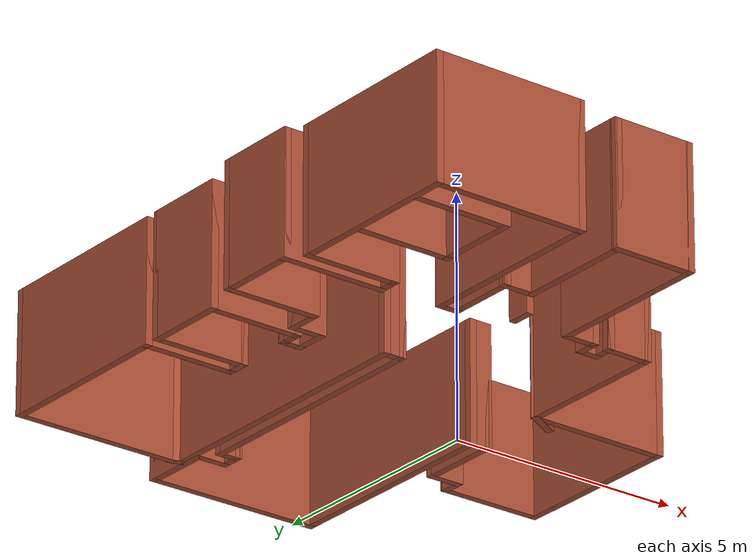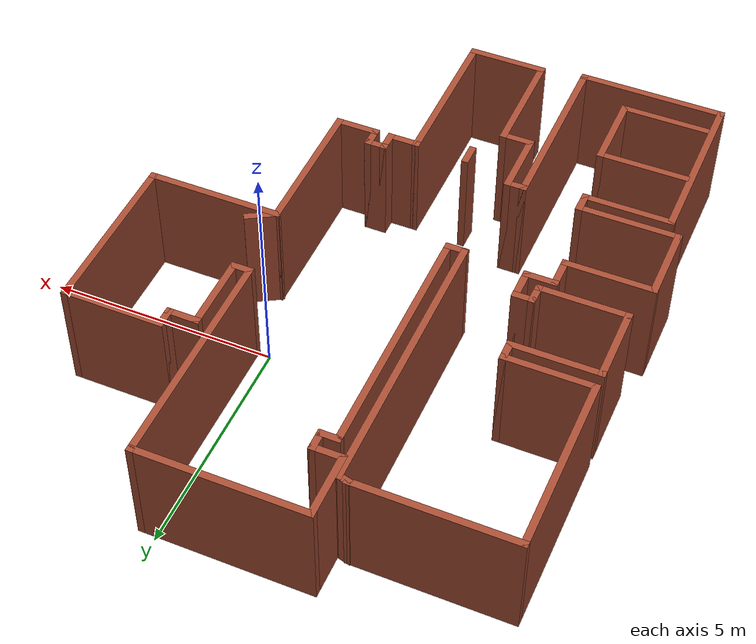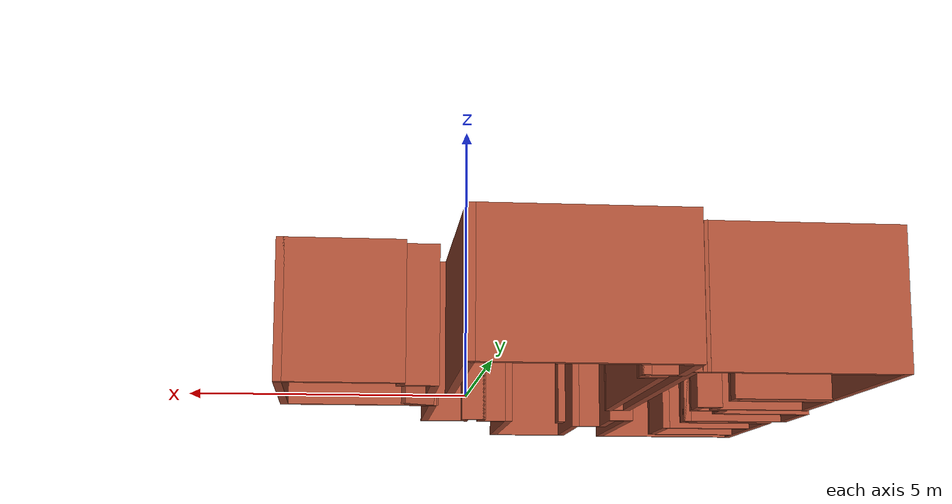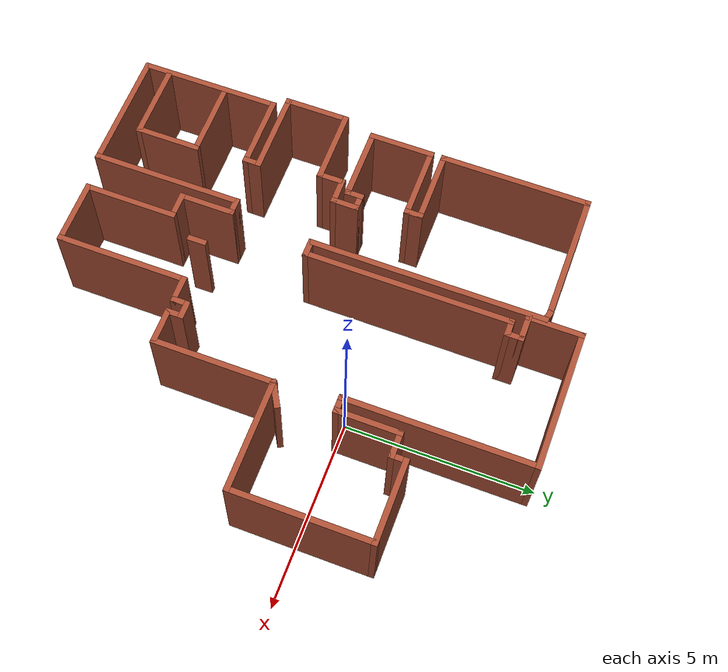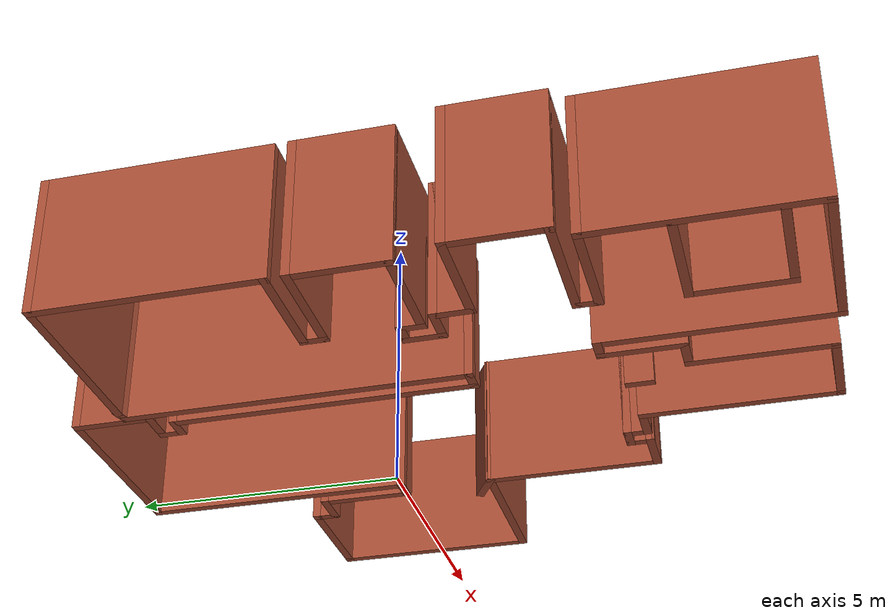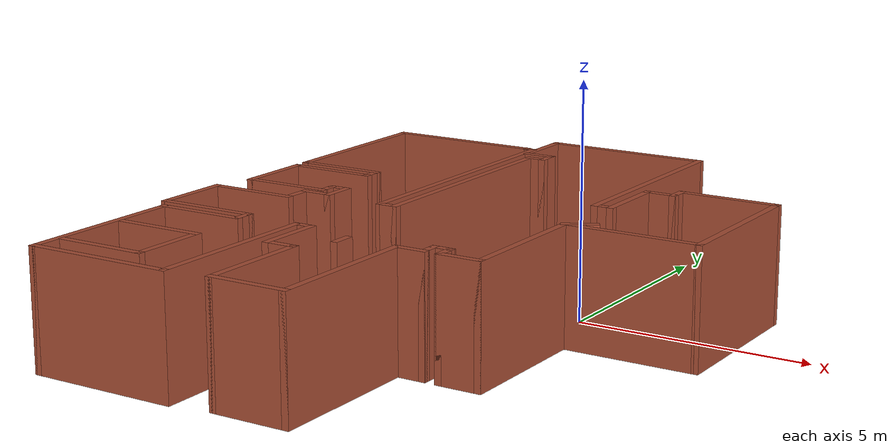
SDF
<?xml version='1.0'?>
<sdf version='1.6'>
  <model name='map_100'>
    <pose frame=''>-1.90817 -1.69509 0 0 -0 0</pose>
    <link name='Wall_0'>
      <collision name='Wall_0_Collision'>
        <geometry>
          <box>
            <size>3.5 0.15 2.5</size>
          </box>
        </geometry>
        <pose frame=''>0 0 1.25 0 -0 0</pose>
      </collision>
      <visual name='Wall_0_Visual'>
        <pose frame=''>0 0 1.25 0 -0 0</pose>
        <geometry>
          <box>
            <size>3.5 0.15 2.5</size>
          </box>
        </geometry>
        <material>
          <script>
            <uri>file://media/materials/scripts/gazebo.material</uri>
            <name>Gazebo/Bricks</name>
          </script>
          <ambient>1 1 1 1</ambient>
        </material>
        <meta>
          <layer>0</layer>
        </meta>
      </visual>
      <pose frame=''>-3.35 5.65 0 0 -0 3.14159</pose>
    </link>
    <link name='Wall_10'>
      <collision name='Wall_10_Collision'>
        <geometry>
          <box>
            <size>0.5 0.15 2.5</size>
          </box>
        </geometry>
        <pose frame=''>0 0 1.25 0 -0 0</pose>
      </collision>
      <visual name='Wall_10_Visual'>
        <pose frame=''>0 0 1.25 0 -0 0</pose>
        <geometry>
          <box>
            <size>0.5 0.15 2.5</size>
          </box>
        </geometry>
        <material>
          <script>
            <uri>file://media/materials/scripts/gazebo.material</uri>
            <name>Gazebo/Bricks</name>
          </script>
          <ambient>1 1 1 1</ambient>
        </material>
        <meta>
          <layer>0</layer>
        </meta>
      </visual>
      <pose frame=''>-3.175 1.625 0 0 -0 -1.5708</pose>
    </link>
    <link name='Wall_11'>
      <collision name='Wall_11_Collision'>
        <geometry>
          <box>
            <size>2 0.15 2.5</size>
          </box>
        </geometry>
        <pose frame=''>0 0 1.25 0 -0 0</pose>
      </collision>
      <visual name='Wall_11_Visual'>
        <pose frame=''>0 0 1.25 0 -0 0</pose>
        <geometry>
          <box>
            <size>2 0.15 2.5</size>
          </box>
        </geometry>
        <material>
          <script>
            <uri>file://media/materials/scripts/gazebo.material</uri>
            <name>Gazebo/Bricks</name>
          </script>
          <ambient>1 1 1 1</ambient>
        </material>
        <meta>
          <layer>0</layer>
        </meta>
      </visual>
      <pose frame=''>-4.1 1.45 0 0 -0 3.14159</pose>
    </link>
    <link name='Wall_12'>
      <collision name='Wall_12_Collision'>
        <geometry>
          <box>
            <size>1.75 0.15 2.5</size>
          </box>
        </geometry>
        <pose frame=''>0 0 1.25 0 -0 0</pose>
      </collision>
      <visual name='Wall_12_Visual'>
        <pose frame=''>0 0 1.25 0 -0 0</pose>
        <geometry>
          <box>
            <size>1.75 0.15 2.5</size>
          </box>
        </geometry>
        <material>
          <script>
            <uri>file://media/materials/scripts/gazebo.material</uri>
            <name>Gazebo/Bricks</name>
          </script>
          <ambient>1 1 1 1</ambient>
        </material>
        <meta>
          <layer>0</layer>
        </meta>
      </visual>
      <pose frame=''>-5.025 0.65 0 0 -0 -1.5708</pose>
    </link>
    <link name='Wall_13'>
      <collision name='Wall_13_Collision'>
        <geometry>
          <box>
            <size>2 0.15 2.5</size>
          </box>
        </geometry>
        <pose frame=''>0 0 1.25 0 -0 0</pose>
      </collision>
      <visual name='Wall_13_Visual'>
        <pose frame=''>0 0 1.25 0 -0 0</pose>
        <geometry>
          <box>
            <size>2 0.15 2.5</size>
          </box>
        </geometry>
        <material>
          <script>
            <uri>file://media/materials/scripts/gazebo.material</uri>
            <name>Gazebo/Bricks</name>
          </script>
          <ambient>1 1 1 1</ambient>
        </material>
        <meta>
          <layer>0</layer>
        </meta>
      </visual>
      <pose frame=''>-4.1 -0.15 0 0 -0 0</pose>
    </link>
    <link name='Wall_14'>
      <collision name='Wall_14_Collision'>
        <geometry>
          <box>
            <size>0.5 0.15 2.5</size>
          </box>
        </geometry>
        <pose frame=''>0 0 1.25 0 -0 0</pose>
      </collision>
      <visual name='Wall_14_Visual'>
        <pose frame=''>0 0 1.25 0 -0 0</pose>
        <geometry>
          <box>
            <size>0.5 0.15 2.5</size>
          </box>
        </geometry>
        <material>
          <script>
            <uri>file://media/materials/scripts/gazebo.material</uri>
            <name>Gazebo/Bricks</name>
          </script>
          <ambient>1 1 1 1</ambient>
        </material>
        <meta>
          <layer>0</layer>
        </meta>
      </visual>
      <pose frame=''>-3.175 0.025 0 0 -0 1.5708</pose>
    </link>
    <link name='Wall_15'>
      <collision name='Wall_15_Collision'>
        <geometry>
          <box>
            <size>0.5 0.15 2.5</size>
          </box>
        </geometry>
        <pose frame=''>0 0 1.25 0 -0 0</pose>
      </collision>
      <visual name='Wall_15_Visual'>
        <pose frame=''>0 0 1.25 0 -0 0</pose>
        <geometry>
          <box>
            <size>0.5 0.15 2.5</size>
          </box>
        </geometry>
        <material>
          <script>
            <uri>file://media/materials/scripts/gazebo.material</uri>
            <name>Gazebo/Bricks</name>
          </script>
          <ambient>1 1 1 1</ambient>
        </material>
        <meta>
          <layer>0</layer>
        </meta>
      </visual>
      <pose frame=''>-3 0.2 0 0 -0 0</pose>
    </link>
    <link name='Wall_16'>
      <collision name='Wall_16_Collision'>
        <geometry>
          <box>
            <size>0.75 0.15 2.5</size>
          </box>
        </geometry>
        <pose frame=''>0 0 1.25 0 -0 0</pose>
      </collision>
      <visual name='Wall_16_Visual'>
        <pose frame=''>0 0 1.25 0 -0 0</pose>
        <geometry>
          <box>
            <size>0.75 0.15 2.5</size>
          </box>
        </geometry>
        <material>
          <script>
            <uri>file://media/materials/scripts/gazebo.material</uri>
            <name>Gazebo/Bricks</name>
          </script>
          <ambient>1 1 1 1</ambient>
        </material>
        <meta>
          <layer>0</layer>
        </meta>
      </visual>
      <pose frame=''>-2.825 -0.1 0 0 -0 -1.5708</pose>
    </link>
    <link name='Wall_17'>
      <collision name='Wall_17_Collision'>
        <geometry>
          <box>
            <size>0.75 0.15 2.5</size>
          </box>
        </geometry>
        <pose frame=''>0 0 1.25 0 -0 0</pose>
      </collision>
      <visual name='Wall_17_Visual'>
        <pose frame=''>0 0 1.25 0 -0 0</pose>
        <geometry>
          <box>
            <size>0.75 0.15 2.5</size>
          </box>
        </geometry>
        <material>
          <script>
            <uri>file://media/materials/scripts/gazebo.material</uri>
            <name>Gazebo/Bricks</name>
          </script>
          <ambient>1 1 1 1</ambient>
        </material>
        <meta>
          <layer>0</layer>
        </meta>
      </visual>
      <pose frame=''>-3.125 -0.4 0 0 -0 3.14159</pose>
    </link>
    <link name='Wall_18'>
      <collision name='Wall_18_Collision'>
        <geometry>
          <box>
            <size>0.75 0.15 2.5</size>
          </box>
        </geometry>
        <pose frame=''>0 0 1.25 0 -0 0</pose>
      </collision>
      <visual name='Wall_18_Visual'>
        <pose frame=''>0 0 1.25 0 -0 0</pose>
        <geometry>
          <box>
            <size>0.75 0.15 2.5</size>
          </box>
        </geometry>
        <material>
          <script>
            <uri>file://media/materials/scripts/gazebo.material</uri>
            <name>Gazebo/Bricks</name>
          </script>
          <ambient>1 1 1 1</ambient>
        </material>
        <meta>
          <layer>0</layer>
        </meta>
      </visual>
      <pose frame=''>-3.425 -0.7 0 0 -0 -1.5708</pose>
    </link>
    <link name='Wall_19'>
      <collision name='Wall_19_Collision'>
        <geometry>
          <box>
            <size>2 0.15 2.5</size>
          </box>
        </geometry>
        <pose frame=''>0 0 1.25 0 -0 0</pose>
      </collision>
      <visual name='Wall_19_Visual'>
        <pose frame=''>0 0 1.25 0 -0 0</pose>
        <geometry>
          <box>
            <size>2 0.15 2.5</size>
          </box>
        </geometry>
        <material>
          <script>
            <uri>file://media/materials/scripts/gazebo.material</uri>
            <name>Gazebo/Bricks</name>
          </script>
          <ambient>1 1 1 1</ambient>
        </material>
        <meta>
          <layer>0</layer>
        </meta>
      </visual>
      <pose frame=''>-4.35 -1 0 0 -0 3.14159</pose>
    </link>
    <link name='Wall_20'>
      <collision name='Wall_20_Collision'>
        <geometry>
          <box>
            <size>1.75 0.15 2.5</size>
          </box>
        </geometry>
        <pose frame=''>0 0 1.25 0 -0 0</pose>
      </collision>
      <visual name='Wall_20_Visual'>
        <pose frame=''>0 0 1.25 0 -0 0</pose>
        <geometry>
          <box>
            <size>1.75 0.15 2.5</size>
          </box>
        </geometry>
        <material>
          <script>
            <uri>file://media/materials/scripts/gazebo.material</uri>
            <name>Gazebo/Bricks</name>
          </script>
          <ambient>1 1 1 1</ambient>
        </material>
        <meta>
          <layer>0</layer>
        </meta>
      </visual>
      <pose frame=''>-5.275 -1.8 0 0 -0 -1.5708</pose>
    </link>
    <link name='Wall_21'>
      <collision name='Wall_21_Collision'>
        <geometry>
          <box>
            <size>2.25 0.15 2.5</size>
          </box>
        </geometry>
        <pose frame=''>0 0 1.25 0 -0 0</pose>
      </collision>
      <visual name='Wall_21_Visual'>
        <pose frame=''>0 0 1.25 0 -0 0</pose>
        <geometry>
          <box>
            <size>2.25 0.15 2.5</size>
          </box>
        </geometry>
        <material>
          <script>
            <uri>file://media/materials/scripts/gazebo.material</uri>
            <name>Gazebo/Bricks</name>
          </script>
          <ambient>1 1 1 1</ambient>
        </material>
        <meta>
          <layer>0</layer>
        </meta>
      </visual>
      <pose frame=''>-4.225 -2.6 0 0 -0 0</pose>
    </link>
    <link name='Wall_22'>
      <collision name='Wall_22_Collision'>
        <geometry>
          <box>
            <size>0.5 0.15 2.5</size>
          </box>
        </geometry>
        <pose frame=''>0 0 1.25 0 -0 0</pose>
      </collision>
      <visual name='Wall_22_Visual'>
        <pose frame=''>0 0 1.25 0 -0 0</pose>
        <geometry>
          <box>
            <size>0.5 0.15 2.5</size>
          </box>
        </geometry>
        <material>
          <script>
            <uri>file://media/materials/scripts/gazebo.material</uri>
            <name>Gazebo/Bricks</name>
          </script>
          <ambient>1 1 1 1</ambient>
        </material>
        <meta>
          <layer>0</layer>
        </meta>
      </visual>
      <pose frame=''>-3.175 -2.775 0 0 -0 -1.5708</pose>
    </link>
    <link name='Wall_23'>
      <collision name='Wall_23_Collision'>
        <geometry>
          <box>
            <size>2 0.15 2.5</size>
          </box>
        </geometry>
        <pose frame=''>0 0 1.25 0 -0 0</pose>
      </collision>
      <visual name='Wall_23_Visual'>
        <pose frame=''>0 0 1.25 0 -0 0</pose>
        <geometry>
          <box>
            <size>2 0.15 2.5</size>
          </box>
        </geometry>
        <material>
          <script>
            <uri>file://media/materials/scripts/gazebo.material</uri>
            <name>Gazebo/Bricks</name>
          </script>
          <ambient>1 1 1 1</ambient>
        </material>
        <meta>
          <layer>0</layer>
        </meta>
      </visual>
      <pose frame=''>-4.1 -2.95 0 0 -0 3.14159</pose>
    </link>
    <link name='Wall_24'>
      <collision name='Wall_24_Collision'>
        <geometry>
          <box>
            <size>3.75 0.15 2.5</size>
          </box>
        </geometry>
        <pose frame=''>0 0 1.25 0 -0 0</pose>
      </collision>
      <visual name='Wall_24_Visual'>
        <pose frame=''>0 0 1.25 0 -0 0</pose>
        <geometry>
          <box>
            <size>3.75 0.15 2.5</size>
          </box>
        </geometry>
        <material>
          <script>
            <uri>file://media/materials/scripts/gazebo.material</uri>
            <name>Gazebo/Bricks</name>
          </script>
          <ambient>1 1 1 1</ambient>
        </material>
        <meta>
          <layer>0</layer>
        </meta>
      </visual>
      <pose frame=''>-5.025 -4.75 0 0 -0 -1.5708</pose>
    </link>
    <link name='Wall_25'>
      <collision name='Wall_25_Collision'>
        <geometry>
          <box>
            <size>3.25 0.15 2.5</size>
          </box>
        </geometry>
        <pose frame=''>0 0 1.25 0 -0 0</pose>
      </collision>
      <visual name='Wall_25_Visual'>
        <pose frame=''>0 0 1.25 0 -0 0</pose>
        <geometry>
          <box>
            <size>3.25 0.15 2.5</size>
          </box>
        </geometry>
        <material>
          <script>
            <uri>file://media/materials/scripts/gazebo.material</uri>
            <name>Gazebo/Bricks</name>
          </script>
          <ambient>1 1 1 1</ambient>
        </material>
        <meta>
          <layer>0</layer>
        </meta>
      </visual>
      <pose frame=''>-3.475 -6.55 0 0 -0 0</pose>
    </link>
    <link name='Wall_26'>
      <collision name='Wall_26_Collision'>
        <geometry>
          <box>
            <size>4 0.15 2.5</size>
          </box>
        </geometry>
        <pose frame=''>0 0 1.25 0 -0 0</pose>
      </collision>
      <visual name='Wall_26_Visual'>
        <pose frame=''>0 0 1.25 0 -0 0</pose>
        <geometry>
          <box>
            <size>4 0.15 2.5</size>
          </box>
        </geometry>
        <material>
          <script>
            <uri>file://media/materials/scripts/gazebo.material</uri>
            <name>Gazebo/Bricks</name>
          </script>
          <ambient>1 1 1 1</ambient>
        </material>
        <meta>
          <layer>0</layer>
        </meta>
      </visual>
      <pose frame=''>-1.925 -4.625 0 0 -0 1.5708</pose>
    </link>
    <link name='Wall_27'>
      <collision name='Wall_27_Collision'>
        <geometry>
          <box>
            <size>0.5 0.15 2.5</size>
          </box>
        </geometry>
        <pose frame=''>0 0 1.25 0 -0 0</pose>
      </collision>
      <visual name='Wall_27_Visual'>
        <pose frame=''>0 0 1.25 0 -0 0</pose>
        <geometry>
          <box>
            <size>0.5 0.15 2.5</size>
          </box>
        </geometry>
        <material>
          <script>
            <uri>file://media/materials/scripts/gazebo.material</uri>
            <name>Gazebo/Bricks</name>
          </script>
          <ambient>1 1 1 1</ambient>
        </material>
        <meta>
          <layer>0</layer>
        </meta>
      </visual>
      <pose frame=''>-1.75 -2.7 0 0 -0 0</pose>
    </link>
    <link name='Wall_28'>
      <collision name='Wall_28_Collision'>
        <geometry>
          <box>
            <size>1.5 0.15 2.5</size>
          </box>
        </geometry>
        <pose frame=''>0 0 1.25 0 -0 0</pose>
      </collision>
      <visual name='Wall_28_Visual'>
        <pose frame=''>0 0 1.25 0 -0 0</pose>
        <geometry>
          <box>
            <size>1.5 0.15 2.5</size>
          </box>
        </geometry>
        <material>
          <script>
            <uri>file://media/materials/scripts/gazebo.material</uri>
            <name>Gazebo/Bricks</name>
          </script>
          <ambient>1 1 1 1</ambient>
        </material>
        <meta>
          <layer>0</layer>
        </meta>
      </visual>
      <pose frame=''>-1.575 -3.375 0 0 -0 -1.5708</pose>
    </link>
    <link name='Wall_29'>
      <collision name='Wall_29_Collision'>
        <geometry>
          <box>
            <size>0.75 0.15 2.5</size>
          </box>
        </geometry>
        <pose frame=''>0 0 1.25 0 -0 0</pose>
      </collision>
      <visual name='Wall_29_Visual'>
        <pose frame=''>0 0 1.25 0 -0 0</pose>
        <geometry>
          <box>
            <size>0.75 0.15 2.5</size>
          </box>
        </geometry>
        <material>
          <script>
            <uri>file://media/materials/scripts/gazebo.material</uri>
            <name>Gazebo/Bricks</name>
          </script>
          <ambient>1 1 1 1</ambient>
        </material>
        <meta>
          <layer>0</layer>
        </meta>
      </visual>
      <pose frame=''>-1.275 -4.05 0 0 -0 0</pose>
    </link>
    <link name='Wall_30'>
      <collision name='Wall_30_Collision'>
        <geometry>
          <box>
            <size>2.5 0.15 2.5</size>
          </box>
        </geometry>
        <pose frame=''>0 0 1.25 0 -0 0</pose>
      </collision>
      <visual name='Wall_30_Visual'>
        <pose frame=''>0 0 1.25 0 -0 0</pose>
        <geometry>
          <box>
            <size>2.5 0.15 2.5</size>
          </box>
        </geometry>
        <material>
          <script>
            <uri>file://media/materials/scripts/gazebo.material</uri>
            <name>Gazebo/Bricks</name>
          </script>
          <ambient>1 1 1 1</ambient>
        </material>
        <meta>
          <layer>0</layer>
        </meta>
      </visual>
      <pose frame=''>-0.975 -5.225 0 0 -0 -1.5708</pose>
    </link>
    <link name='Wall_31'>
      <collision name='Wall_31_Collision'>
        <geometry>
          <box>
            <size>1.75 0.15 2.5</size>
          </box>
        </geometry>
        <pose frame=''>0 0 1.25 0 -0 0</pose>
      </collision>
      <visual name='Wall_31_Visual'>
        <pose frame=''>0 0 1.25 0 -0 0</pose>
        <geometry>
          <box>
            <size>1.75 0.15 2.5</size>
          </box>
        </geometry>
        <material>
          <script>
            <uri>file://media/materials/scripts/gazebo.material</uri>
            <name>Gazebo/Bricks</name>
          </script>
          <ambient>1 1 1 1</ambient>
        </material>
        <meta>
          <layer>0</layer>
        </meta>
      </visual>
      <pose frame=''>-0.175 -6.4 0 0 -0 0</pose>
    </link>
    <link name='Wall_32'>
      <collision name='Wall_32_Collision'>
        <geometry>
          <box>
            <size>3.5 0.15 2.5</size>
          </box>
        </geometry>
        <pose frame=''>0 0 1.25 0 -0 0</pose>
      </collision>
      <visual name='Wall_32_Visual'>
        <pose frame=''>0 0 1.25 0 -0 0</pose>
        <geometry>
          <box>
            <size>3.5 0.15 2.5</size>
          </box>
        </geometry>
        <material>
          <script>
            <uri>file://media/materials/scripts/gazebo.material</uri>
            <name>Gazebo/Bricks</name>
          </script>
          <ambient>1 1 1 1</ambient>
        </material>
        <meta>
          <layer>0</layer>
        </meta>
      </visual>
      <pose frame=''>0.625 -4.725 0 0 -0 1.5708</pose>
    </link>
    <link name='Wall_33'>
      <collision name='Wall_33_Collision'>
        <geometry>
          <box>
            <size>0.75 0.15 2.5</size>
          </box>
        </geometry>
        <pose frame=''>0 0 1.25 0 -0 0</pose>
      </collision>
      <visual name='Wall_33_Visual'>
        <pose frame=''>0 0 1.25 0 -0 0</pose>
        <geometry>
          <box>
            <size>0.75 0.15 2.5</size>
          </box>
        </geometry>
        <material>
          <script>
            <uri>file://media/materials/scripts/gazebo.material</uri>
            <name>Gazebo/Bricks</name>
          </script>
          <ambient>1 1 1 1</ambient>
        </material>
        <meta>
          <layer>0</layer>
        </meta>
      </visual>
      <pose frame=''>0.925 -3.05 0 0 -0 0</pose>
    </link>
    <link name='Wall_34'>
      <collision name='Wall_34_Collision'>
        <geometry>
          <box>
            <size>0.5 0.15 2.5</size>
          </box>
        </geometry>
        <pose frame=''>0 0 1.25 0 -0 0</pose>
      </collision>
      <visual name='Wall_34_Visual'>
        <pose frame=''>0 0 1.25 0 -0 0</pose>
        <geometry>
          <box>
            <size>0.5 0.15 2.5</size>
          </box>
        </geometry>
        <material>
          <script>
            <uri>file://media/materials/scripts/gazebo.material</uri>
            <name>Gazebo/Bricks</name>
          </script>
          <ambient>1 1 1 1</ambient>
        </material>
        <meta>
          <layer>0</layer>
        </meta>
      </visual>
      <pose frame=''>1.225 -2.875 0 0 -0 1.5708</pose>
    </link>
    <link name='Wall_35'>
      <collision name='Wall_35_Collision'>
        <geometry>
          <box>
            <size>0.5 0.15 2.5</size>
          </box>
        </geometry>
        <pose frame=''>0 0 1.25 0 -0 0</pose>
      </collision>
      <visual name='Wall_35_Visual'>
        <pose frame=''>0 0 1.25 0 -0 0</pose>
        <geometry>
          <box>
            <size>0.5 0.15 2.5</size>
          </box>
        </geometry>
        <material>
          <script>
            <uri>file://media/materials/scripts/gazebo.material</uri>
            <name>Gazebo/Bricks</name>
          </script>
          <ambient>1 1 1 1</ambient>
        </material>
        <meta>
          <layer>0</layer>
        </meta>
      </visual>
      <pose frame=''>1.4 -2.7 0 0 -0 0</pose>
    </link>
    <link name='Wall_36'>
      <collision name='Wall_36_Collision'>
        <geometry>
          <box>
            <size>0.5 0.15 2.5</size>
          </box>
        </geometry>
        <pose frame=''>0 0 1.25 0 -0 0</pose>
      </collision>
      <visual name='Wall_36_Visual'>
        <pose frame=''>0 0 1.25 0 -0 0</pose>
        <geometry>
          <box>
            <size>0.5 0.15 2.5</size>
          </box>
        </geometry>
        <material>
          <script>
            <uri>file://media/materials/scripts/gazebo.material</uri>
            <name>Gazebo/Bricks</name>
          </script>
          <ambient>1 1 1 1</ambient>
        </material>
        <meta>
          <layer>0</layer>
        </meta>
      </visual>
      <pose frame=''>1.575 -2.875 0 0 -0 -1.5708</pose>
    </link>
    <link name='Wall_37'>
      <collision name='Wall_37_Collision'>
        <geometry>
          <box>
            <size>1 0.15 2.5</size>
          </box>
        </geometry>
        <pose frame=''>0 0 1.25 0 -0 0</pose>
      </collision>
      <visual name='Wall_37_Visual'>
        <pose frame=''>0 0 1.25 0 -0 0</pose>
        <geometry>
          <box>
            <size>1 0.15 2.5</size>
          </box>
        </geometry>
        <material>
          <script>
            <uri>file://media/materials/scripts/gazebo.material</uri>
            <name>Gazebo/Bricks</name>
          </script>
          <ambient>1 1 1 1</ambient>
        </material>
        <meta>
          <layer>0</layer>
        </meta>
      </visual>
      <pose frame=''>2 -3.05 0 0 -0 0</pose>
    </link>
    <link name='Wall_38'>
      <collision name='Wall_38_Collision'>
        <geometry>
          <box>
            <size>3.25 0.15 2.5</size>
          </box>
        </geometry>
        <pose frame=''>0 0 1.25 0 -0 0</pose>
      </collision>
      <visual name='Wall_38_Visual'>
        <pose frame=''>0 0 1.25 0 -0 0</pose>
        <geometry>
          <box>
            <size>3.25 0.15 2.5</size>
          </box>
        </geometry>
        <material>
          <script>
            <uri>file://media/materials/scripts/gazebo.material</uri>
            <name>Gazebo/Bricks</name>
          </script>
          <ambient>1 1 1 1</ambient>
        </material>
        <meta>
          <layer>0</layer>
        </meta>
      </visual>
      <pose frame=''>2.425 -1.5 0 0 -0 1.5708</pose>
    </link>
    <link name='Wall_39'>
      <collision name='Wall_39_Collision'>
        <geometry>
          <box>
            <size>3 0.15 2.5</size>
          </box>
        </geometry>
        <pose frame=''>0 0 1.25 0 -0 0</pose>
      </collision>
      <visual name='Wall_39_Visual'>
        <pose frame=''>0 0 1.25 0 -0 0</pose>
        <geometry>
          <box>
            <size>3 0.15 2.5</size>
          </box>
        </geometry>
        <material>
          <script>
            <uri>file://media/materials/scripts/gazebo.material</uri>
            <name>Gazebo/Bricks</name>
          </script>
          <ambient>1 1 1 1</ambient>
        </material>
        <meta>
          <layer>0</layer>
        </meta>
      </visual>
      <pose frame=''>3.85 0.05 0 0 -0 0</pose>
    </link>
    <link name='Wall_40'>
      <collision name='Wall_40_Collision'>
        <geometry>
          <box>
            <size>3.75 0.15 2.5</size>
          </box>
        </geometry>
        <pose frame=''>0 0 1.25 0 -0 0</pose>
      </collision>
      <visual name='Wall_40_Visual'>
        <pose frame=''>0 0 1.25 0 -0 0</pose>
        <geometry>
          <box>
            <size>3.75 0.15 2.5</size>
          </box>
        </geometry>
        <material>
          <script>
            <uri>file://media/materials/scripts/gazebo.material</uri>
            <name>Gazebo/Bricks</name>
          </script>
          <ambient>1 1 1 1</ambient>
        </material>
        <meta>
          <layer>0</layer>
        </meta>
      </visual>
      <pose frame=''>5.275 1.85 0 0 -0 1.5708</pose>
    </link>
    <link name='Wall_41'>
      <collision name='Wall_41_Collision'>
        <geometry>
          <box>
            <size>2.25 0.15 2.5</size>
          </box>
        </geometry>
        <pose frame=''>0 0 1.25 0 -0 0</pose>
      </collision>
      <visual name='Wall_41_Visual'>
        <pose frame=''>0 0 1.25 0 -0 0</pose>
        <geometry>
          <box>
            <size>2.25 0.15 2.5</size>
          </box>
        </geometry>
        <material>
          <script>
            <uri>file://media/materials/scripts/gazebo.material</uri>
            <name>Gazebo/Bricks</name>
          </script>
          <ambient>1 1 1 1</ambient>
        </material>
        <meta>
          <layer>0</layer>
        </meta>
      </visual>
      <pose frame=''>4.225 3.65 0 0 -0 3.14159</pose>
    </link>
    <link name='Wall_42'>
      <collision name='Wall_42_Collision'>
        <geometry>
          <box>
            <size>0.5 0.15 2.5</size>
          </box>
        </geometry>
        <pose frame=''>0 0 1.25 0 -0 0</pose>
      </collision>
      <visual name='Wall_42_Visual'>
        <pose frame=''>0 0 1.25 0 -0 0</pose>
        <geometry>
          <box>
            <size>0.5 0.15 2.5</size>
          </box>
        </geometry>
        <material>
          <script>
            <uri>file://media/materials/scripts/gazebo.material</uri>
            <name>Gazebo/Bricks</name>
          </script>
          <ambient>1 1 1 1</ambient>
        </material>
        <meta>
          <layer>0</layer>
        </meta>
      </visual>
      <pose frame=''>3.175 3.475 0 0 -0 -1.5708</pose>
    </link>
    <link name='Wall_43'>
      <collision name='Wall_43_Collision'>
        <geometry>
          <box>
            <size>0.75 0.15 2.5</size>
          </box>
        </geometry>
        <pose frame=''>0 0 1.25 0 -0 0</pose>
      </collision>
      <visual name='Wall_43_Visual'>
        <pose frame=''>0 0 1.25 0 -0 0</pose>
        <geometry>
          <box>
            <size>0.75 0.15 2.5</size>
          </box>
        </geometry>
        <material>
          <script>
            <uri>file://media/materials/scripts/gazebo.material</uri>
            <name>Gazebo/Bricks</name>
          </script>
          <ambient>1 1 1 1</ambient>
        </material>
        <meta>
          <layer>0</layer>
        </meta>
      </visual>
      <pose frame=''>2.875 3.3 0 0 -0 3.14159</pose>
    </link>
    <link name='Wall_44'>
      <collision name='Wall_44_Collision'>
        <geometry>
          <box>
            <size>1.75 0.15 2.5</size>
          </box>
        </geometry>
        <pose frame=''>0 0 1.25 0 -0 0</pose>
      </collision>
      <visual name='Wall_44_Visual'>
        <pose frame=''>0 0 1.25 0 -0 0</pose>
        <geometry>
          <box>
            <size>1.75 0.15 2.5</size>
          </box>
        </geometry>
        <material>
          <script>
            <uri>file://media/materials/scripts/gazebo.material</uri>
            <name>Gazebo/Bricks</name>
          </script>
          <ambient>1 1 1 1</ambient>
        </material>
        <meta>
          <layer>0</layer>
        </meta>
      </visual>
      <pose frame=''>2.575 2.5 0 0 -0 -1.5708</pose>
    </link>
    <link name='Wall_45'>
      <collision name='Wall_45_Collision'>
        <geometry>
          <box>
            <size>0.5 0.15 2.5</size>
          </box>
        </geometry>
        <pose frame=''>0 0 1.25 0 -0 0</pose>
      </collision>
      <visual name='Wall_45_Visual'>
        <pose frame=''>0 0 1.25 0 -0 0</pose>
        <geometry>
          <box>
            <size>0.5 0.15 2.5</size>
          </box>
        </geometry>
        <material>
          <script>
            <uri>file://media/materials/scripts/gazebo.material</uri>
            <name>Gazebo/Bricks</name>
          </script>
          <ambient>1 1 1 1</ambient>
        </material>
        <meta>
          <layer>0</layer>
        </meta>
      </visual>
      <pose frame=''>2.4 1.7 0 0 -0 3.14159</pose>
    </link>
    <link name='Wall_46'>
      <collision name='Wall_46_Collision'>
        <geometry>
          <box>
            <size>5 0.15 2.5</size>
          </box>
        </geometry>
        <pose frame=''>0 0 1.25 0 -0 0</pose>
      </collision>
      <visual name='Wall_46_Visual'>
        <pose frame=''>0 0 1.25 0 -0 0</pose>
        <geometry>
          <box>
            <size>5 0.15 2.5</size>
          </box>
        </geometry>
        <material>
          <script>
            <uri>file://media/materials/scripts/gazebo.material</uri>
            <name>Gazebo/Bricks</name>
          </script>
          <ambient>1 1 1 1</ambient>
        </material>
        <meta>
          <layer>0</layer>
        </meta>
      </visual>
      <pose frame=''>2.225 4.125 0 0 -0 1.5708</pose>
    </link>
    <link name='Wall_47'>
      <collision name='Wall_47_Collision'>
        <geometry>
          <box>
            <size>3.75 0.15 2.5</size>
          </box>
        </geometry>
        <pose frame=''>0 0 1.25 0 -0 0</pose>
      </collision>
      <visual name='Wall_47_Visual'>
        <pose frame=''>0 0 1.25 0 -0 0</pose>
        <geometry>
          <box>
            <size>3.75 0.15 2.5</size>
          </box>
        </geometry>
        <material>
          <script>
            <uri>file://media/materials/scripts/gazebo.material</uri>
            <name>Gazebo/Bricks</name>
          </script>
          <ambient>1 1 1 1</ambient>
        </material>
        <meta>
          <layer>0</layer>
        </meta>
      </visual>
      <pose frame=''>0.425 6.55 0 0 -0 3.14159</pose>
    </link>
    <link name='Wall_48'>
      <collision name='Wall_48_Collision'>
        <geometry>
          <box>
            <size>1.5 0.15 2.5</size>
          </box>
        </geometry>
        <pose frame=''>0 0 1.25 0 -0 0</pose>
      </collision>
      <visual name='Wall_48_Visual'>
        <pose frame=''>0 0 1.25 0 -0 0</pose>
        <geometry>
          <box>
            <size>1.5 0.15 2.5</size>
          </box>
        </geometry>
        <material>
          <script>
            <uri>file://media/materials/scripts/gazebo.material</uri>
            <name>Gazebo/Bricks</name>
          </script>
          <ambient>1 1 1 1</ambient>
        </material>
        <meta>
          <layer>0</layer>
        </meta>
      </visual>
      <pose frame=''>-1.375 5.875 0 0 -0 -1.5708</pose>
    </link>
    <link name='Wall_49'>
      <collision name='Wall_49_Collision'>
        <geometry>
          <box>
            <size>0.75 0.15 2.5</size>
          </box>
        </geometry>
        <pose frame=''>0 0 1.25 0 -0 0</pose>
      </collision>
      <visual name='Wall_49_Visual'>
        <pose frame=''>0 0 1.25 0 -0 0</pose>
        <geometry>
          <box>
            <size>0.75 0.15 2.5</size>
          </box>
        </geometry>
        <material>
          <script>
            <uri>file://media/materials/scripts/gazebo.material</uri>
            <name>Gazebo/Bricks</name>
          </script>
          <ambient>1 1 1 1</ambient>
        </material>
        <meta>
          <layer>0</layer>
        </meta>
      </visual>
      <pose frame=''>-1.075 5.2 0 0 -0 0</pose>
    </link>
    <link name='Wall_50'>
      <collision name='Wall_50_Collision'>
        <geometry>
          <box>
            <size>0.5 0.15 2.5</size>
          </box>
        </geometry>
        <pose frame=''>0 0 1.25 0 -0 0</pose>
      </collision>
      <visual name='Wall_50_Visual'>
        <pose frame=''>0 0 1.25 0 -0 0</pose>
        <geometry>
          <box>
            <size>0.5 0.15 2.5</size>
          </box>
        </geometry>
        <material>
          <script>
            <uri>file://media/materials/scripts/gazebo.material</uri>
            <name>Gazebo/Bricks</name>
          </script>
          <ambient>1 1 1 1</ambient>
        </material>
        <meta>
          <layer>0</layer>
        </meta>
      </visual>
      <pose frame=''>-0.775 5.025 0 0 -0 -1.5708</pose>
    </link>
    <link name='Wall_51'>
      <collision name='Wall_51_Collision'>
        <geometry>
          <box>
            <size>0.5 0.15 2.5</size>
          </box>
        </geometry>
        <pose frame=''>0 0 1.25 0 -0 0</pose>
      </collision>
      <visual name='Wall_51_Visual'>
        <pose frame=''>0 0 1.25 0 -0 0</pose>
        <geometry>
          <box>
            <size>0.5 0.15 2.5</size>
          </box>
        </geometry>
        <material>
          <script>
            <uri>file://media/materials/scripts/gazebo.material</uri>
            <name>Gazebo/Bricks</name>
          </script>
          <ambient>1 1 1 1</ambient>
        </material>
        <meta>
          <layer>0</layer>
        </meta>
      </visual>
      <pose frame=''>-0.95 4.85 0 0 -0 3.14159</pose>
    </link>
    <link name='Wall_52'>
      <collision name='Wall_52_Collision'>
        <geometry>
          <box>
            <size>5.5 0.15 2.5</size>
          </box>
        </geometry>
        <pose frame=''>0 0 1.25 0 -0 0</pose>
      </collision>
      <visual name='Wall_52_Visual'>
        <pose frame=''>0 0 1.25 0 -0 0</pose>
        <geometry>
          <box>
            <size>5.5 0.15 2.5</size>
          </box>
        </geometry>
        <material>
          <script>
            <uri>file://media/materials/scripts/gazebo.material</uri>
            <name>Gazebo/Bricks</name>
          </script>
          <ambient>1 1 1 1</ambient>
        </material>
        <meta>
          <layer>0</layer>
        </meta>
      </visual>
      <pose frame=''>-1.125 2.175 0 0 -0 -1.5708</pose>
    </link>
    <link name='Wall_53'>
      <collision name='Wall_53_Collision'>
        <geometry>
          <box>
            <size>0.5 0.15 2.5</size>
          </box>
        </geometry>
        <pose frame=''>0 0 1.25 0 -0 0</pose>
      </collision>
      <visual name='Wall_53_Visual'>
        <pose frame=''>0 0 1.25 0 -0 0</pose>
        <geometry>
          <box>
            <size>0.5 0.15 2.5</size>
          </box>
        </geometry>
        <material>
          <script>
            <uri>file://media/materials/scripts/gazebo.material</uri>
            <name>Gazebo/Bricks</name>
          </script>
          <ambient>1 1 1 1</ambient>
        </material>
        <meta>
          <layer>0</layer>
        </meta>
      </visual>
      <pose frame=''>-1.3 -0.5 0 0 -0 3.14159</pose>
    </link>
    <link name='Wall_54'>
      <collision name='Wall_54_Collision'>
        <geometry>
          <box>
            <size>6.25 0.15 2.5</size>
          </box>
        </geometry>
        <pose frame=''>0 0 1.25 0 -0 0</pose>
      </collision>
      <visual name='Wall_54_Visual'>
        <pose frame=''>0 0 1.25 0 -0 0</pose>
        <geometry>
          <box>
            <size>6.25 0.15 2.5</size>
          </box>
        </geometry>
        <material>
          <script>
            <uri>file://media/materials/scripts/gazebo.material</uri>
            <name>Gazebo/Bricks</name>
          </script>
          <ambient>1 1 1 1</ambient>
        </material>
        <meta>
          <layer>0</layer>
        </meta>
      </visual>
      <pose frame=''>-1.475 2.55 0 0 -0 1.5708</pose>
    </link>
    <link name='Wall_55'>
      <collision name='Wall_55_Collision'>
        <geometry>
          <box>
            <size>0.356155 0.15 2.5</size>
          </box>
        </geometry>
        <pose frame=''>0 0 1.25 0 -0 0</pose>
      </collision>
      <visual name='Wall_55_Visual'>
        <pose frame=''>0 0 1.25 0 -0 0</pose>
        <geometry>
          <box>
            <size>0.356155 0.15 2.5</size>
          </box>
        </geometry>
        <material>
          <script>
            <uri>file://media/materials/scripts/gazebo.material</uri>
            <name>Gazebo/Bricks</name>
          </script>
          <ambient>1 1 1 1</ambient>
        </material>
        <meta>
          <layer>0</layer>
        </meta>
      </visual>
      <pose frame=''>-1.575 5.625 0 0 -0 2.89661</pose>
    </link>
    <link name='Wall_57'>
      <collision name='Wall_57_Collision'>
        <geometry>
          <box>
            <size>0.75 0.15 2.5</size>
          </box>
        </geometry>
        <pose frame=''>0 0 1.25 0 -0 0</pose>
      </collision>
      <visual name='Wall_57_Visual'>
        <pose frame=''>0 0 1.25 0 -0 0</pose>
        <geometry>
          <box>
            <size>0.75 0.15 2.5</size>
          </box>
        </geometry>
        <material>
          <script>
            <uri>file://media/materials/scripts/gazebo.material</uri>
            <name>Gazebo/Bricks</name>
          </script>
          <ambient>1 1 1 1</ambient>
        </material>
        <meta>
          <layer>0</layer>
        </meta>
      </visual>
      <pose frame=''>2.68481 0.2 0 0 -0 0.523599</pose>
    </link>
    <link name='Wall_59'>
      <collision name='Wall_59_Collision'>
        <geometry>
          <box>
            <size>0.5 0.15 2.5</size>
          </box>
        </geometry>
        <pose frame=''>0 0 1.25 0 -0 0</pose>
      </collision>
      <visual name='Wall_59_Visual'>
        <pose frame=''>0 0 1.25 0 -0 0</pose>
        <geometry>
          <box>
            <size>0.5 0.15 2.5</size>
          </box>
        </geometry>
        <material>
          <script>
            <uri>file://media/materials/scripts/gazebo.material</uri>
            <name>Gazebo/Bricks</name>
          </script>
          <ambient>1 1 1 1</ambient>
        </material>
        <meta>
          <layer>0</layer>
        </meta>
      </visual>
      <pose frame=''>-0.514101 -3.17898 0 0 -0 -1.5708</pose>
    </link>
    <link name='Wall_61'>
      <collision name='Wall_61_Collision'>
        <geometry>
          <box>
            <size>2 0.15 2.5</size>
          </box>
        </geometry>
        <pose frame=''>0 0 1.25 0 -0 0</pose>
      </collision>
      <visual name='Wall_61_Visual'>
        <pose frame=''>0 0 1.25 0 -0 0</pose>
        <geometry>
          <box>
            <size>2 0.15 2.5</size>
          </box>
        </geometry>
        <material>
          <script>
            <uri>file://media/materials/scripts/gazebo.material</uri>
            <name>Gazebo/Bricks</name>
          </script>
          <ambient>1 1 1 1</ambient>
        </material>
        <meta>
          <layer>0</layer>
        </meta>
      </visual>
      <pose frame=''>-3.98645 -4.30559 0 0 -0 0</pose>
    </link>
    <link name='Wall_62'>
      <collision name='Wall_62_Collision'>
        <geometry>
          <box>
            <size>1.75 0.15 2.5</size>
          </box>
        </geometry>
        <pose frame=''>0 0 1.25 0 -0 0</pose>
      </collision>
      <visual name='Wall_62_Visual'>
        <pose frame=''>0 0 1.25 0 -0 0</pose>
        <geometry>
          <box>
            <size>1.75 0.15 2.5</size>
          </box>
        </geometry>
        <material>
          <script>
            <uri>file://media/materials/scripts/gazebo.material</uri>
            <name>Gazebo/Bricks</name>
          </script>
          <ambient>1 1 1 1</ambient>
        </material>
        <meta>
          <layer>0</layer>
        </meta>
      </visual>
      <pose frame=''>-3.06145 -5.10559 0 0 -0 -1.5708</pose>
    </link>
    <link name='Wall_63'>
      <collision name='Wall_63_Collision'>
        <geometry>
          <box>
            <size>2 0.15 2.5</size>
          </box>
        </geometry>
        <pose frame=''>0 0 1.25 0 -0 0</pose>
      </collision>
      <visual name='Wall_63_Visual'>
        <pose frame=''>0 0 1.25 0 -0 0</pose>
        <geometry>
          <box>
            <size>2 0.15 2.5</size>
          </box>
        </geometry>
        <material>
          <script>
            <uri>file://media/materials/scripts/gazebo.material</uri>
            <name>Gazebo/Bricks</name>
          </script>
          <ambient>1 1 1 1</ambient>
        </material>
        <meta>
          <layer>0</layer>
        </meta>
      </visual>
      <pose frame=''>-3.98645 -5.90559 0 0 -0 3.14159</pose>
    </link>
    <link name='Wall_8'>
      <collision name='Wall_8_Collision'>
        <geometry>
          <box>
            <size>4 0.15 2.5</size>
          </box>
        </geometry>
        <pose frame=''>0 0 1.25 0 -0 0</pose>
      </collision>
      <visual name='Wall_8_Visual'>
        <pose frame=''>0 0 1.25 0 -0 0</pose>
        <geometry>
          <box>
            <size>4 0.15 2.5</size>
          </box>
        </geometry>
        <material>
          <script>
            <uri>file://media/materials/scripts/gazebo.material</uri>
            <name>Gazebo/Bricks</name>
          </script>
          <ambient>1 1 1 1</ambient>
        </material>
        <meta>
          <layer>0</layer>
        </meta>
      </visual>
      <pose frame=''>-5.025 3.725 0 0 -0 -1.5708</pose>
    </link>
    <link name='Wall_9'>
      <collision name='Wall_9_Collision'>
        <geometry>
          <box>
            <size>2 0.15 2.5</size>
          </box>
        </geometry>
        <pose frame=''>0 0 1.25 0 -0 0</pose>
      </collision>
      <visual name='Wall_9_Visual'>
        <pose frame=''>0 0 1.25 0 -0 0</pose>
        <geometry>
          <box>
            <size>2 0.15 2.5</size>
          </box>
        </geometry>
        <material>
          <script>
            <uri>file://media/materials/scripts/gazebo.material</uri>
            <name>Gazebo/Bricks</name>
          </script>
          <ambient>1 1 1 1</ambient>
        </material>
        <meta>
          <layer>0</layer>
        </meta>
      </visual>
      <pose frame=''>-4.1 1.8 0 0 -0 0</pose>
    </link>
    <static>1</static>
  </model>
</sdf>
